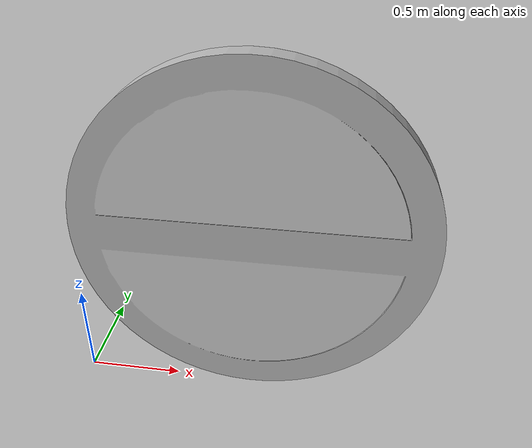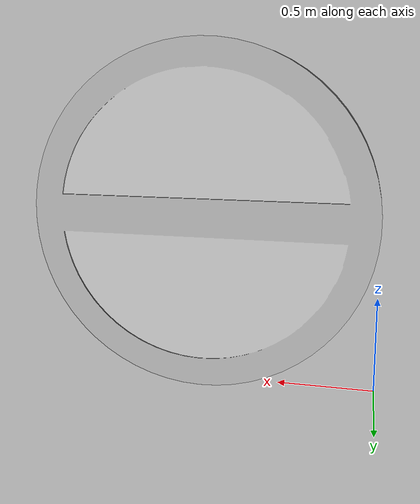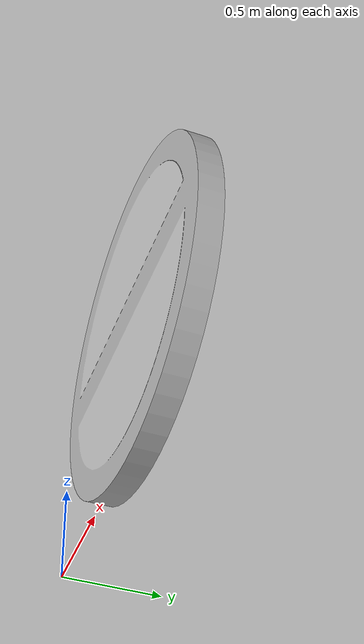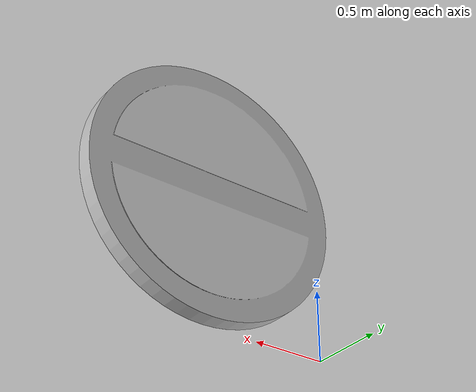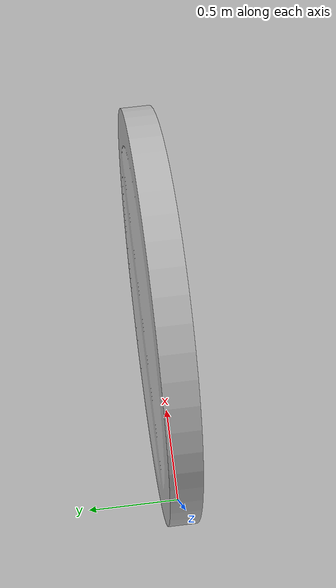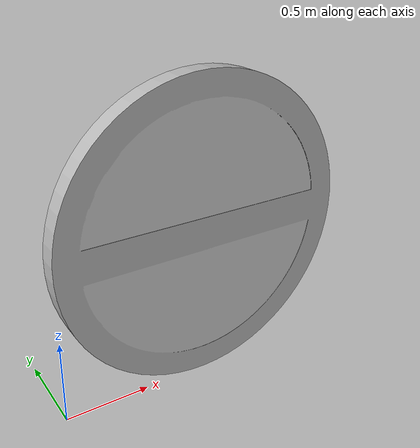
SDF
<?xml version="1.0"?>

<sdf version="1.6">
  <model name='windows_O'>
    <static>true</static>
    <link name="body">

        <visual name="visual">
          <geometry>
            <mesh><uri>model://models/windows_O/meshes/windows_O.dae</uri></mesh>
          </geometry>
        </visual>

        <collision name="collision">
          <geometry>
            <mesh><uri>model://models/windows_O/meshes/windows_O.dae</uri></mesh>
          </geometry>
        </collision>

    </link>
  </model>
</sdf>
